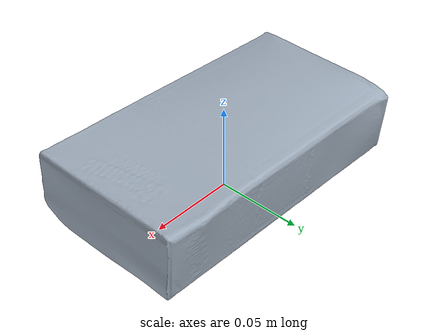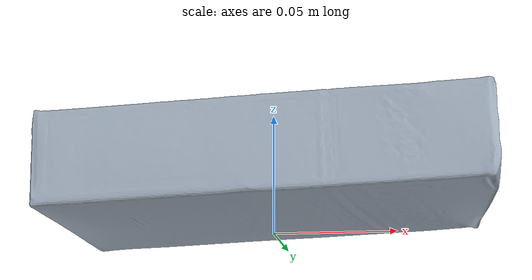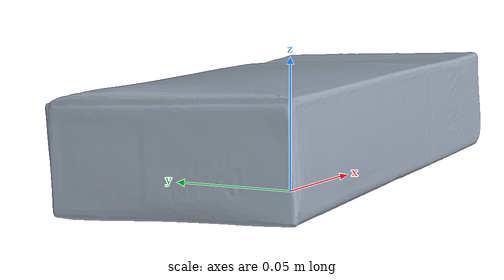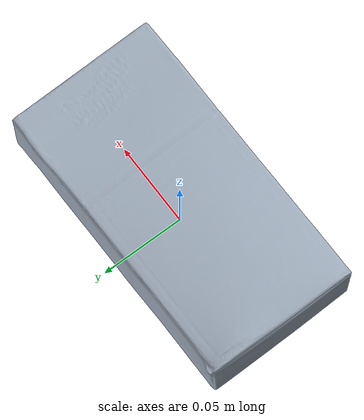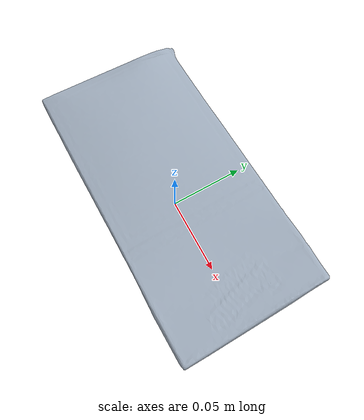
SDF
<?xml version="1.0"?>
<!-- Generated by generate_models.py. Benchmark mass and collision
     approximations are documented in physics_models.json. -->
<sdf version="1.7" xmlns:drake="http://drake.mit.edu">
  <model name="sugar_box_controller"><link name="sugar_box_base">
    <inertial><pose>-0.00201501202139 -0.000366161152949 0.0249794163515 0 0 0</pose>
      <mass>0.1</mass><inertia><ixx>7.93797972767e-05</ixx><iyy>0.00026445823371</iyy><izz>0.000315303023549</izz><ixy>-3.19188141666e-06</ixy><ixz>-9.37397601968e-06</ixz><iyz>1.84655302673e-06</iyz></inertia></inertial>
    <visual name="object_visual"><geometry><mesh><uri>sugar_box_centered.obj</uri>
      </mesh></geometry><material><diffuse>0.62 0.67 0.73 1</diffuse></material></visual>
    <collision name="hull_00"><geometry><mesh>
      <uri>collision/sugar_box_00.obj</uri><drake:declare_convex/></mesh></geometry>
      <drake:proximity_properties><drake:mu_static>0.3</drake:mu_static><drake:mu_dynamic>0.3</drake:mu_dynamic></drake:proximity_properties></collision>
    <!-- Native contact wiring requires these three spheres LAST. -->
    <collision name="ground_witness_0"><pose>-0.08497 -0.046227 0.001 0 0 0</pose>
      <geometry><sphere><radius>0.001</radius></sphere></geometry>
      <drake:proximity_properties><drake:mu_static>0.3</drake:mu_static><drake:mu_dynamic>0.3</drake:mu_dynamic></drake:proximity_properties></collision>
    <collision name="ground_witness_1"><pose>0.02756 0.006908 0.001 0 0 0</pose>
      <geometry><sphere><radius>0.001</radius></sphere></geometry>
      <drake:proximity_properties><drake:mu_static>0.3</drake:mu_static><drake:mu_dynamic>0.3</drake:mu_dynamic></drake:proximity_properties></collision>
    <collision name="ground_witness_2"><pose>-0.085009 0.043065 0.001 0 0 0</pose>
      <geometry><sphere><radius>0.001</radius></sphere></geometry>
      <drake:proximity_properties><drake:mu_static>0.3</drake:mu_static><drake:mu_dynamic>0.3</drake:mu_dynamic></drake:proximity_properties></collision>
  </link></model>
</sdf>
